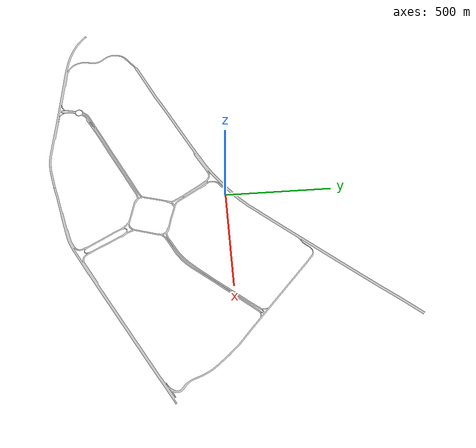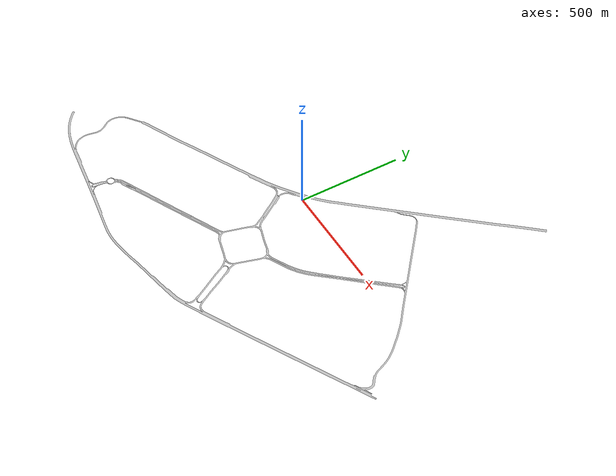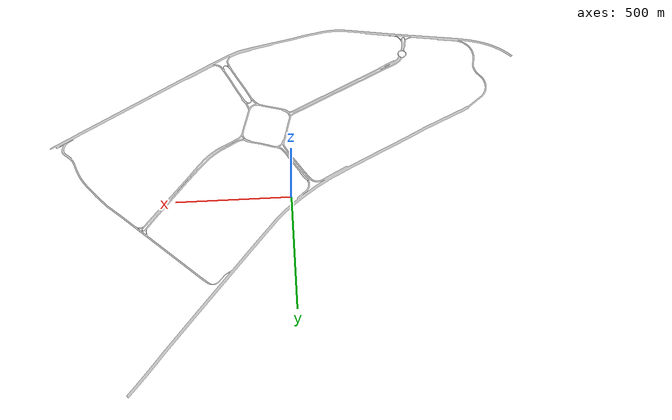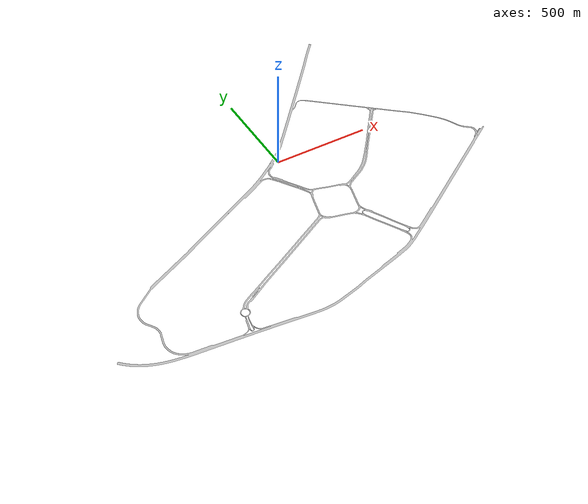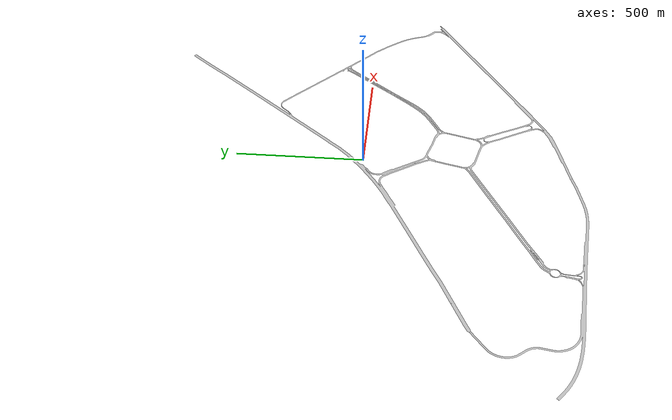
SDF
<?xml version="1.0" ?>
<sdf version="1.9">
  <model name="crossroad_road">
    <static>true</static>

    <link name="road_link">

      <!-- Road surface + lane markings -->
      <visual name="road_visual">
        <geometry>
          <mesh>
            <uri>meshes/road.obj</uri>
          </mesh>
        </geometry>
      </visual>

      <!-- Collision uses same mesh; disable if performance matters -->
      <collision name="road_collision">
        <surface>
          <friction>
            <ode>
              <mu>0.8</mu>
              <mu2>0.8</mu2>
            </ode>
          </friction>
        </surface>
        <geometry>
          <mesh>
            <uri>meshes/road.obj</uri>
          </mesh>
        </geometry>
      </collision>

    </link>
  </model>
</sdf>
